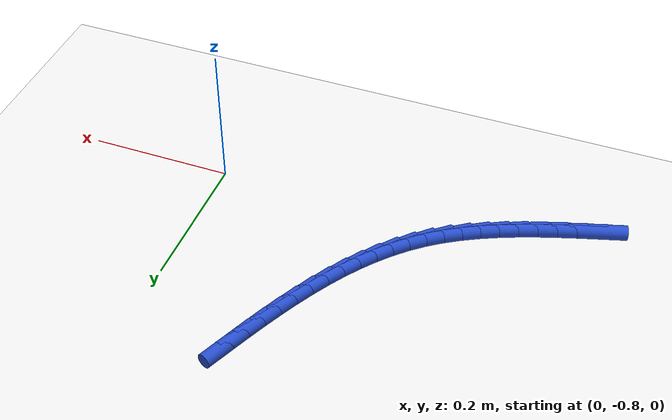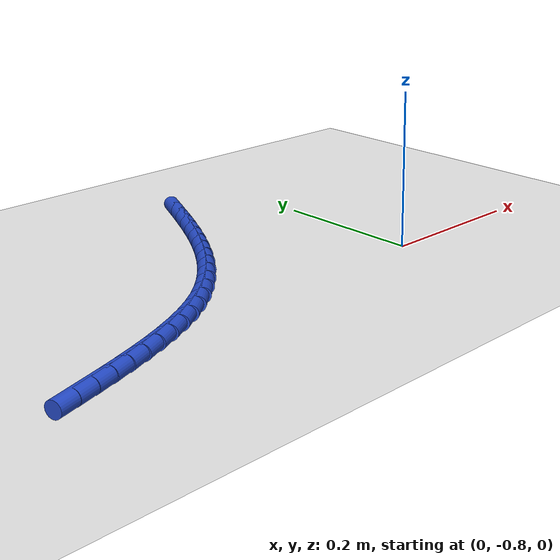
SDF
<sdf version="1.6">
 <world name="default">
  <model name="ground_plane">
   <static>1</static>
   <link name="link">
    <collision name="collision">
     <geometry><plane><normal>0 0 1</normal><size>100 100</size></plane></geometry>
     <surface><friction><ode><mu>100</mu><mu2>50</mu2></ode></friction></surface>
    </collision>
    <visual name="visual">
     <cast_shadows>0</cast_shadows>
     <geometry><plane><normal>0 0 1</normal><size>100 100</size></plane></geometry>
     <material>
      <script><uri>file://media/materials/scripts/gazebo.material</uri><name>Gazebo/WhiteGlow</name></script>
     </material>
    </visual>
   </link>
  </model>
  <model name="line">
   <link name="link_218">
    <pose>-0.5116176226609935 -0.8592199216027311 0.01 0 1.57 0.2968170953065481</pose>
    <collision name="collision">
     <geometry><cylinder><radius>0.01</radius><length>0.08</length></cylinder></geometry>
    </collision>
    <visual name="visual">
     <material>
      <script><name>Gazebo/Blue</name><uri>file://media/materials/scripts/gazebo.material</uri></script>
     </material>
     <geometry><cylinder><radius>0.01</radius><length>0.08</length></cylinder></geometry>
    </visual>
   </link>
   <link name="link_219">
    <pose>-0.48671192047745937 -0.8516024579265928 0.01 0 1.57 0.3110938399109485</pose>
    <collision name="collision">
     <geometry><cylinder><radius>0.01</radius><length>0.08</length></cylinder></geometry>
    </collision>
    <visual name="visual">
     <material>
      <script><name>Gazebo/Blue</name><uri>file://media/materials/scripts/gazebo.material</uri></script>
     </material>
     <geometry><cylinder><radius>0.01</radius><length>0.08</length></cylinder></geometry>
    </visual>
   </link>
   <link name="link_220">
    <pose>-0.4619106470452297 -0.8436280051059575 0.01 0 1.57 0.3322465632672948</pose>
    <collision name="collision">
     <geometry><cylinder><radius>0.01</radius><length>0.08</length></cylinder></geometry>
    </collision>
    <visual name="visual">
     <material>
      <script><name>Gazebo/Blue</name><uri>file://media/materials/scripts/gazebo.material</uri></script>
     </material>
     <geometry><cylinder><radius>0.01</radius><length>0.08</length></cylinder></geometry>
    </visual>
   </link>
   <link name="link_221">
    <pose>-0.4373574552049608 -0.8351562468707481 0.01 0 1.57 0.36054143939164807</pose>
    <collision name="collision">
     <geometry><cylinder><radius>0.01</radius><length>0.08</length></cylinder></geometry>
    </collision>
    <visual name="visual">
     <material>
      <script><name>Gazebo/Blue</name><uri>file://media/materials/scripts/gazebo.material</uri></script>
     </material>
     <geometry><cylinder><radius>0.01</radius><length>0.08</length></cylinder></geometry>
    </visual>
   </link>
   <link name="link_222">
    <pose>-0.4131959977973064 -0.8260468669508861 0.01 0 1.57 0.39634529987964773</pose>
    <collision name="collision">
     <geometry><cylinder><radius>0.01</radius><length>0.08</length></cylinder></geometry>
    </collision>
    <visual name="visual">
     <material>
      <script><name>Gazebo/Blue</name><uri>file://media/materials/scripts/gazebo.material</uri></script>
     </material>
     <geometry><cylinder><radius>0.01</radius><length>0.08</length></cylinder></geometry>
    </visual>
   </link>
   <link name="link_223">
    <pose>-0.3895699276629212 -0.8161595490762937 0.01 0 1.57 0.4400912177833703</pose>
    <collision name="collision">
     <geometry><cylinder><radius>0.01</radius><length>0.08</length></cylinder></geometry>
    </collision>
    <visual name="visual">
     <material>
      <script><name>Gazebo/Blue</name><uri>file://media/materials/scripts/gazebo.material</uri></script>
     </material>
     <geometry><cylinder><radius>0.01</radius><length>0.08</length></cylinder></geometry>
    </visual>
   </link>
   <link name="link_224">
    <pose>-0.3666228976424596 -0.8053539769768927 0.01 0 1.57 0.49222417291443266</pose>
    <collision name="collision">
     <geometry><cylinder><radius>0.01</radius><length>0.08</length></cylinder></geometry>
    </collision>
    <visual name="visual">
     <material>
      <script><name>Gazebo/Blue</name><uri>file://media/materials/scripts/gazebo.material</uri></script>
     </material>
     <geometry><cylinder><radius>0.01</radius><length>0.08</length></cylinder></geometry>
    </visual>
   </link>
   <link name="link_225">
    <pose>-0.3444985605765761 -0.7934898343826051 0.01 0 1.57 0.5531183976875192</pose>
    <collision name="collision">
     <geometry><cylinder><radius>0.01</radius><length>0.08</length></cylinder></geometry>
    </collision>
    <visual name="visual">
     <material>
      <script><name>Gazebo/Blue</name><uri>file://media/materials/scripts/gazebo.material</uri></script>
     </material>
     <geometry><cylinder><radius>0.01</radius><length>0.08</length></cylinder></geometry>
    </visual>
   </link>
   <link name="link_226">
    <pose>-0.3233405693059255 -0.780426805023353 0.01 0 1.57 0.6229604349328359</pose>
    <collision name="collision">
     <geometry><cylinder><radius>0.01</radius><length>0.08</length></cylinder></geometry>
    </collision>
    <visual name="visual">
     <material>
      <script><name>Gazebo/Blue</name><uri>file://media/materials/scripts/gazebo.material</uri></script>
     </material>
     <geometry><cylinder><radius>0.01</radius><length>0.08</length></cylinder></geometry>
    </visual>
   </link>
   <link name="link_227">
    <pose>-0.3032925766711622 -0.766024572629058 0.01 0 1.57 0.6992604631739622</pose>
    <collision name="collision">
     <geometry><cylinder><radius>0.01</radius><length>0.08</length></cylinder></geometry>
    </collision>
    <visual name="visual">
     <material>
      <script><name>Gazebo/Blue</name><uri>file://media/materials/scripts/gazebo.material</uri></script>
     </material>
     <geometry><cylinder><radius>0.01</radius><length>0.08</length></cylinder></geometry>
    </visual>
   </link>
   <link name="link_228">
    <pose>-0.28446024845947165 -0.7501861144313443 0.01 0 1.57 0.7720030944754306</pose>
    <collision name="collision">
     <geometry><cylinder><radius>0.01</radius><length>0.08</length></cylinder></geometry>
    </collision>
    <visual name="visual">
     <material>
      <script><name>Gazebo/Blue</name><uri>file://media/materials/scripts/gazebo.material</uri></script>
     </material>
     <geometry><cylinder><radius>0.01</radius><length>0.08</length></cylinder></geometry>
    </visual>
   </link>
   <link name="link_229">
    <pose>-0.26679609453129366 -0.7329889580880923 0.01 0 1.57 0.8382463790029773</pose>
    <collision name="collision">
     <geometry><cylinder><radius>0.01</radius><length>0.08</length></cylinder></geometry>
    </collision>
    <visual name="visual">
     <material>
      <script><name>Gazebo/Blue</name><uri>file://media/materials/scripts/gazebo.material</uri></script>
     </material>
     <geometry><cylinder><radius>0.01</radius><length>0.08</length></cylinder></geometry>
    </visual>
   </link>
   <link name="link_230">
    <pose>-0.2502140314412604 -0.7145546156992004 0.01 0 1.57 0.8977405575139434</pose>
    <collision name="collision">
     <geometry><cylinder><radius>0.01</radius><length>0.08</length></cylinder></geometry>
    </collision>
    <visual name="visual">
     <material>
      <script><name>Gazebo/Blue</name><uri>file://media/materials/scripts/gazebo.material</uri></script>
     </material>
     <geometry><cylinder><radius>0.01</radius><length>0.08</length></cylinder></geometry>
    </visual>
   </link>
   <link name="link_231">
    <pose>-0.23462797574329922 -0.6950045993653682 0.01 0 1.57 0.9504914451743388</pose>
    <collision name="collision">
     <geometry><cylinder><radius>0.01</radius><length>0.08</length></cylinder></geometry>
    </collision>
    <visual name="visual">
     <material>
      <script><name>Gazebo/Blue</name><uri>file://media/materials/scripts/gazebo.material</uri></script>
     </material>
     <geometry><cylinder><radius>0.01</radius><length>0.08</length></cylinder></geometry>
    </visual>
   </link>
   <link name="link_232">
    <pose>-0.2199518439913379 -0.6744604211872954 0.01 0 1.57 0.9966776787331191</pose>
    <collision name="collision">
     <geometry><cylinder><radius>0.01</radius><length>0.08</length></cylinder></geometry>
    </collision>
    <visual name="visual">
     <material>
      <script><name>Gazebo/Blue</name><uri>file://media/materials/scripts/gazebo.material</uri></script>
     </material>
     <geometry><cylinder><radius>0.01</radius><length>0.08</length></cylinder></geometry>
    </visual>
   </link>
   <link name="link_233">
    <pose>-0.20609955273930394 -0.6530435932656816 0.01 0 1.57 1.0365773359000152</pose>
    <collision name="collision">
     <geometry><cylinder><radius>0.01</radius><length>0.08</length></cylinder></geometry>
    </collision>
    <visual name="visual">
     <material>
      <script><name>Gazebo/Blue</name><uri>file://media/materials/scripts/gazebo.material</uri></script>
     </material>
     <geometry><cylinder><radius>0.01</radius><length>0.08</length></cylinder></geometry>
    </visual>
   </link>
   <link name="link_234">
    <pose>-0.19298501854112526 -0.6308756277012267 0.01 0 1.57 1.0705099057163392</pose>
    <collision name="collision">
     <geometry><cylinder><radius>0.01</radius><length>0.08</length></cylinder></geometry>
    </collision>
    <visual name="visual">
     <material>
      <script><name>Gazebo/Blue</name><uri>file://media/materials/scripts/gazebo.material</uri></script>
     </material>
     <geometry><cylinder><radius>0.01</radius><length>0.08</length></cylinder></geometry>
    </visual>
   </link>
   <link name="link_235">
    <pose>-0.1805221579507296 -0.6080780365946307 0.01 0 1.57 1.0987939755681746</pose>
    <collision name="collision">
     <geometry><cylinder><radius>0.01</radius><length>0.08</length></cylinder></geometry>
    </collision>
    <visual name="visual">
     <material>
      <script><name>Gazebo/Blue</name><uri>file://media/materials/scripts/gazebo.material</uri></script>
     </material>
     <geometry><cylinder><radius>0.01</radius><length>0.08</length></cylinder></geometry>
    </visual>
   </link>
   <link name="link_236">
    <pose>-0.16862488752204427 -0.5847723320465924 0.01 0 1.57 1.1217181604785926</pose>
    <collision name="collision">
     <geometry><cylinder><radius>0.01</radius><length>0.08</length></cylinder></geometry>
    </collision>
    <visual name="visual">
     <material>
      <script><name>Gazebo/Blue</name><uri>file://media/materials/scripts/gazebo.material</uri></script>
     </material>
     <geometry><cylinder><radius>0.01</radius><length>0.08</length></cylinder></geometry>
    </visual>
   </link>
   <link name="link_237">
    <pose>-0.15720712380899773 -0.561080026157813 0.01 0 1.57 1.1395219031523713</pose>
    <collision name="collision">
     <geometry><cylinder><radius>0.01</radius><length>0.08</length></cylinder></geometry>
    </collision>
    <visual name="visual">
     <material>
      <script><name>Gazebo/Blue</name><uri>file://media/materials/scripts/gazebo.material</uri></script>
     </material>
     <geometry><cylinder><radius>0.01</radius><length>0.08</length></cylinder></geometry>
    </visual>
   </link>
   <link name="link_238">
    <pose>-0.14618278336551735 -0.5371226310289918 0.01 0 1.57 1.1523829252294613</pose>
    <collision name="collision">
     <geometry><cylinder><radius>0.01</radius><length>0.08</length></cylinder></geometry>
    </collision>
    <visual name="visual">
     <material>
      <script><name>Gazebo/Blue</name><uri>file://media/materials/scripts/gazebo.material</uri></script>
     </material>
     <geometry><cylinder><radius>0.01</radius><length>0.08</length></cylinder></geometry>
    </visual>
   </link>
   <link name="link_239">
    <pose>-0.13546578274553087 -0.5130216587608285 0.01 0 1.57 1.1604086834150065</pose>
    <collision name="collision">
     <geometry><cylinder><radius>0.01</radius><length>0.08</length></cylinder></geometry>
    </collision>
    <visual name="visual">
     <material>
      <script><name>Gazebo/Blue</name><uri>file://media/materials/scripts/gazebo.material</uri></script>
     </material>
     <geometry><cylinder><radius>0.01</radius><length>0.08</length></cylinder></geometry>
    </visual>
   </link>
  </model>
 </world>
</sdf>
